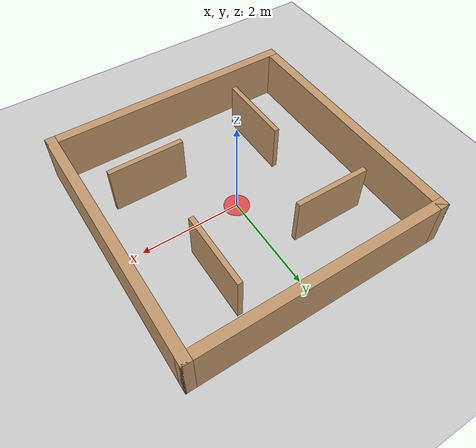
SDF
<?xml version="1.0" ?>
<sdf version="1.6">
  <world name="arena">

    <plugin filename="gz-sim-physics-system" name="gz::sim::systems::Physics"/>
    <plugin filename="gz-sim-sensors-system" name="gz::sim::systems::Sensors">
      <render_engine>ogre2</render_engine>
    </plugin>
    <plugin filename="gz-sim-user-commands-system" name="gz::sim::systems::UserCommands"/>
    <plugin filename="gz-sim-scene-broadcaster-system" name="gz::sim::systems::SceneBroadcaster"/>

    <light name='sun' type='directional'>
      <cast_shadows>0</cast_shadows> <pose>0 0 10 0 0 0</pose>
      <diffuse>0.8 0.8 0.8 1</diffuse>
      <specular>0.2 0.2 0.2 1</specular>
      <attenuation>
        <range>1000</range>
        <constant>0.9</constant>
        <linear>0.01</linear>
        <quadratic>0.001</quadratic>
      </attenuation>
      <direction>-0.5 0.1 -0.9</direction>
    </light>

    <model name='ground_plane'>
      <static>1</static>
      <link name='link'>
        <collision name='collision'>
          <geometry><plane><normal>0 0 1</normal><size>100 100</size></plane></geometry>
          <surface><friction><ode><mu>100</mu><mu2>50</mu2></ode></friction></surface>
        </collision>
        <visual name='visual'>
          <cast_shadows>0</cast_shadows>
          <geometry><plane><normal>0 0 1</normal><size>100 100</size></plane></geometry>
          <material><script><uri>file://media/materials/scripts/gazebo.material</uri><name>Gazebo/Grey</name></script></material>
        </visual>
      </link>
    </model>

    <model name="outer_wall_top">
      <static>true</static><pose>0 2.5 0.5 0 0 0</pose>
      <link name="link"><collision name="collision"><geometry><box><size>5.2 0.2 1</size></box></geometry></collision><visual name="visual"><geometry><box><size>5.2 0.2 1</size></box></geometry><material><ambient>0.76 0.60 0.42 1</ambient><diffuse>0.76 0.60 0.42 1</diffuse></material></visual></link>
    </model>
    <model name="outer_wall_bottom">
      <static>true</static><pose>0 -2.5 0.5 0 0 0</pose>
      <link name="link"><collision name="collision"><geometry><box><size>5.2 0.2 1</size></box></geometry></collision><visual name="visual"><geometry><box><size>5.2 0.2 1</size></box></geometry><material><ambient>0.76 0.60 0.42 1</ambient><diffuse>0.76 0.60 0.42 1</diffuse></material></visual></link>
    </model>
    <model name="outer_wall_left">
      <static>true</static><pose>-2.5 0 0.5 0 0 0</pose>
      <link name="link"><collision name="collision"><geometry><box><size>0.2 5.2 1</size></box></geometry></collision><visual name="visual"><geometry><box><size>0.2 5.2 1</size></box></geometry><material><ambient>0.76 0.60 0.42 1</ambient><diffuse>0.76 0.60 0.42 1</diffuse></material></visual></link>
    </model>
    <model name="outer_wall_right">
      <static>true</static><pose>2.5 0 0.5 0 0 0</pose>
      <link name="link"><collision name="collision"><geometry><box><size>0.2 5.2 1</size></box></geometry></collision><visual name="visual"><geometry><box><size>0.2 5.2 1</size></box></geometry><material><ambient>0.76 0.60 0.42 1</ambient><diffuse>0.76 0.60 0.42 1</diffuse></material></visual></link>
    </model>

    <model name="div_tl">
      <static>true</static><pose>-1.2 1.2 0.5 0 0 0</pose>
      <link name="link">
        <collision name="collision"><geometry><box><size>1.5 0.1 1</size></box></geometry></collision>
        <visual name="visual"><geometry><box><size>1.5 0.1 1</size></box></geometry>
          <material><ambient>0.76 0.60 0.42 1</ambient><diffuse>0.76 0.60 0.42 1</diffuse></material>
        </visual>
      </link>
    </model>

    <model name="div_br">
      <static>true</static><pose>1.2 -1.2 0.5 0 0 0</pose>
      <link name="link">
        <collision name="collision"><geometry><box><size>1.5 0.1 1</size></box></geometry></collision>
        <visual name="visual"><geometry><box><size>1.5 0.1 1</size></box></geometry>
          <material><ambient>0.76 0.60 0.42 1</ambient><diffuse>0.76 0.60 0.42 1</diffuse></material>
        </visual>
      </link>
    </model>

    <model name="div_tr">
      <static>true</static><pose>1.2 1.2 0.5 0 0 0</pose>
      <link name="link">
        <collision name="collision"><geometry><box><size>0.1 1.5 1</size></box></geometry></collision>
        <visual name="visual"><geometry><box><size>0.1 1.5 1</size></box></geometry>
          <material><ambient>0.76 0.60 0.42 1</ambient><diffuse>0.76 0.60 0.42 1</diffuse></material>
        </visual>
      </link>
    </model>

    <model name="div_bl">
      <static>true</static><pose>-1.2 -1.2 0.5 0 0 0</pose>
      <link name="link">
        <collision name="collision"><geometry><box><size>0.1 1.5 1</size></box></geometry></collision>
        <visual name="visual"><geometry><box><size>0.1 1.5 1</size></box></geometry>
          <material><ambient>0.76 0.60 0.42 1</ambient><diffuse>0.76 0.60 0.42 1</diffuse></material>
        </visual>
      </link>
    </model>

    <model name="goal_marker">
      <pose>0.0 0.0 0.01 0 0 0</pose>
      <static>true</static>
      <link name="link">
        <visual name="visual">
          <geometry><cylinder><radius>0.25</radius><length>0.02</length></cylinder></geometry>
          <material>
            <ambient>1.0 0.0 0.0 0.6</ambient>
            <diffuse>1.0 0.0 0.0 0.6</diffuse>
            <emissive>1.0 0.0 0.0 0.6</emissive>
          </material>
        </visual>
      </link>
    </model>

  </world>
</sdf>
